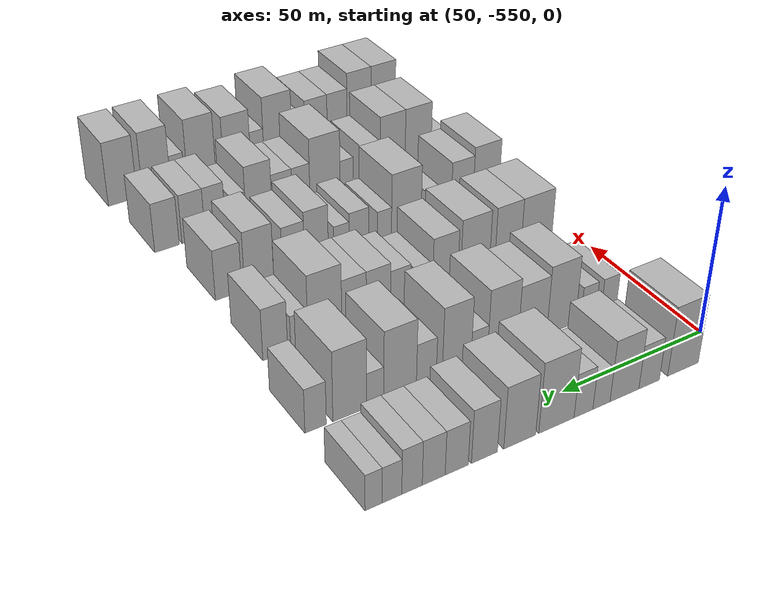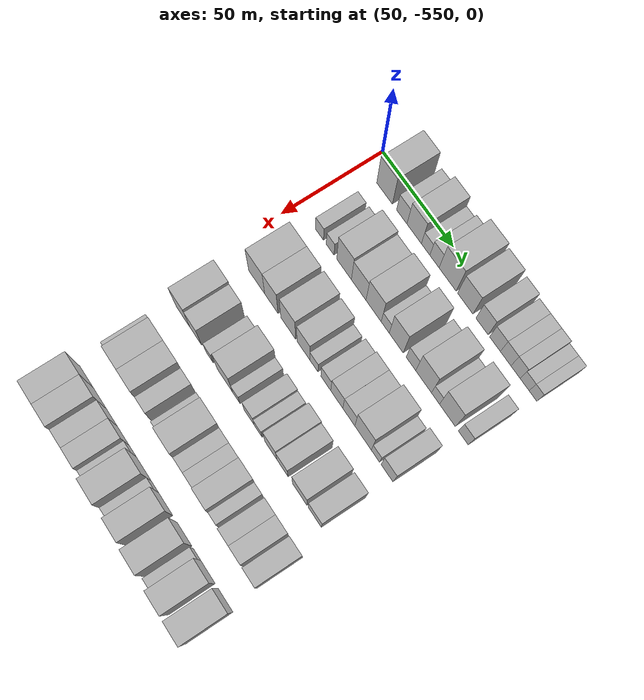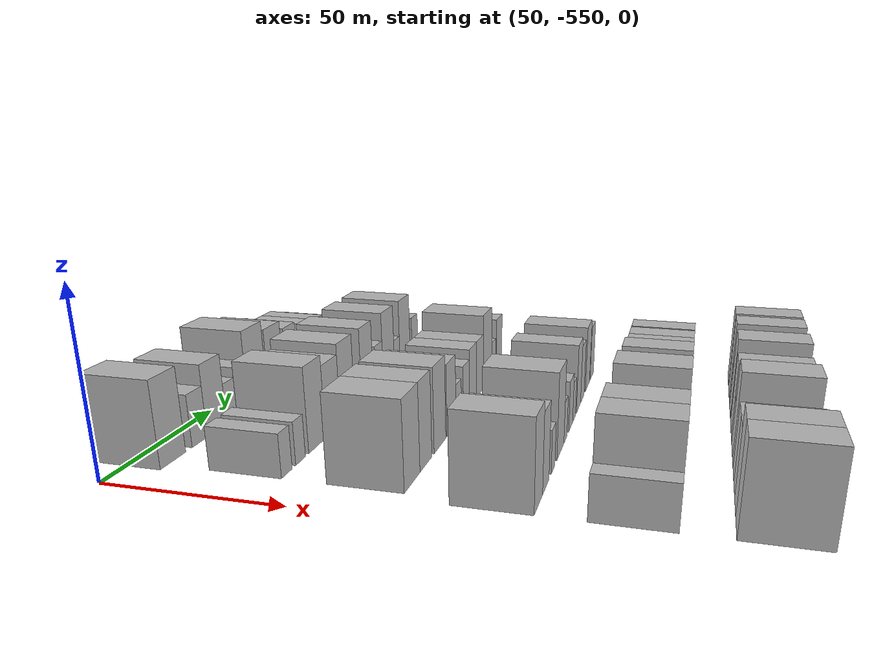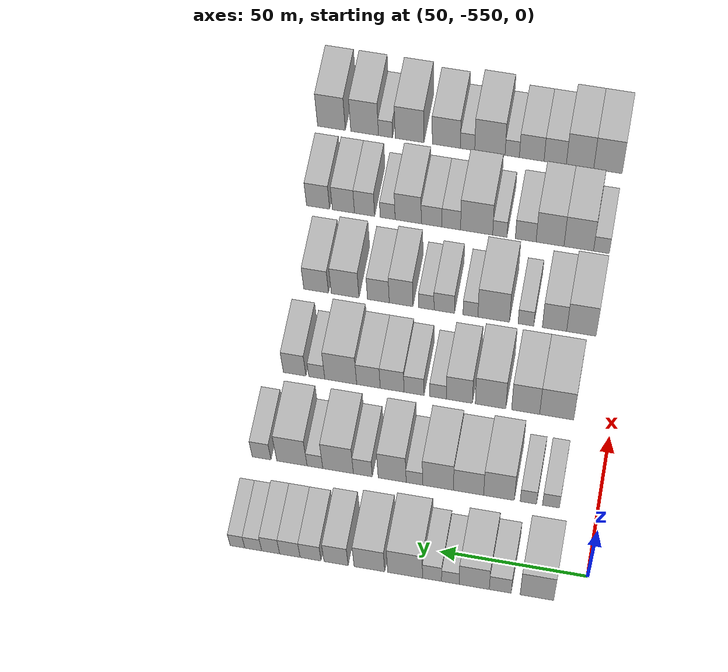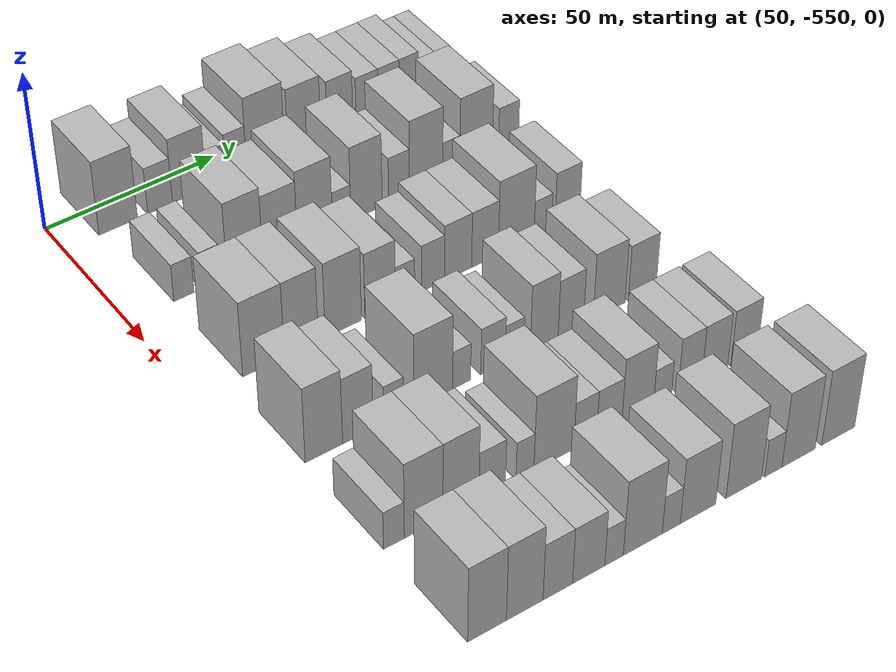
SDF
<sdf version="1.6">
 <world name="default">
  <model name="building_1">
   <static>1</static>
   <pose>50.0000 -534.3825 0 0.000000 0.000000 0.000000</pose>
   <link name="link">
    <pose>0 0 12.00 0 0 0</pose>
    <collision name="collision"><geometry><box><size>20.0000 11.2351 24.0000</size></box></geometry></collision>
    <visual name="visual">
     <cast_shadows>0</cast_shadows>
     <geometry><box><size>20.0000 11.2351 24.0000</size></box></geometry>
     <material>
      <script>
       <uri>model://HANNAS_wall/materials/scripts</uri>
       <uri>model://HANNAS_wall/materials/textures</uri>
       <name>vrc/HANNAS_wall</name>
      </script>
     </material>
    </visual>
   </link>
  </model>
  <model name="building_2">
   <static>1</static>
   <pose>50.0000 -522.0917 0 0.000000 0.000000 0.000000</pose>
   <link name="link">
    <pose>0 0 7.50 0 0 0</pose>
    <collision name="collision"><geometry><box><size>20.0000 7.3464 15.0000</size></box></geometry></collision>
    <visual name="visual">
     <cast_shadows>0</cast_shadows>
     <geometry><box><size>20.0000 7.3464 15.0000</size></box></geometry>
     <material>
      <script>
       <uri>model://HANNAS_wall/materials/scripts</uri>
       <uri>model://HANNAS_wall/materials/textures</uri>
       <name>vrc/HANNAS_wall</name>
      </script>
     </material>
    </visual>
   </link>
  </model>
  <model name="building_3">
   <static>1</static>
   <pose>50.0000 -513.3601 0 0.000000 0.000000 0.000000</pose>
   <link name="link">
    <pose>0 0 10.50 0 0 0</pose>
    <collision name="collision"><geometry><box><size>20.0000 10.1168 21.0000</size></box></geometry></collision>
    <visual name="visual">
     <cast_shadows>0</cast_shadows>
     <geometry><box><size>20.0000 10.1168 21.0000</size></box></geometry>
     <material>
      <script>
       <uri>model://HANNAS_wall/materials/scripts</uri>
       <uri>model://HANNAS_wall/materials/textures</uri>
       <name>vrc/HANNAS_wall</name>
      </script>
     </material>
    </visual>
   </link>
  </model>
  <model name="building_4">
   <static>1</static>
   <pose>50.0000 -505.3508 0 0.000000 0.000000 0.000000</pose>
   <link name="link">
    <pose>0 0 6.00 0 0 0</pose>
    <collision name="collision"><geometry><box><size>20.0000 5.9018 12.0000</size></box></geometry></collision>
    <visual name="visual">
     <cast_shadows>0</cast_shadows>
     <geometry><box><size>20.0000 5.9018 12.0000</size></box></geometry>
     <material>
      <script>
       <uri>model://HANNAS_wall/materials/scripts</uri>
       <uri>model://HANNAS_wall/materials/textures</uri>
       <name>vrc/HANNAS_wall</name>
      </script>
     </material>
    </visual>
   </link>
  </model>
  <model name="building_5">
   <static>1</static>
   <pose>50.0000 -499.2001 0 0.000000 0.000000 0.000000</pose>
   <link name="link">
    <pose>0 0 7.50 0 0 0</pose>
    <collision name="collision"><geometry><box><size>20.0000 6.3995 15.0000</size></box></geometry></collision>
    <visual name="visual">
     <cast_shadows>0</cast_shadows>
     <geometry><box><size>20.0000 6.3995 15.0000</size></box></geometry>
     <material>
      <script>
       <uri>model://HANNAS_wall/materials/scripts</uri>
       <uri>model://HANNAS_wall/materials/textures</uri>
       <name>vrc/HANNAS_wall</name>
      </script>
     </material>
    </visual>
   </link>
  </model>
  <model name="building_6">
   <static>1</static>
   <pose>50.0000 -490.1335 0 0.000000 0.000000 0.000000</pose>
   <link name="link">
    <pose>0 0 12.00 0 0 0</pose>
    <collision name="collision"><geometry><box><size>20.0000 11.7337 24.0000</size></box></geometry></collision>
    <visual name="visual">
     <cast_shadows>0</cast_shadows>
     <geometry><box><size>20.0000 11.7337 24.0000</size></box></geometry>
     <material>
      <script>
       <uri>model://HANNAS_wall/materials/scripts</uri>
       <uri>model://HANNAS_wall/materials/textures</uri>
       <name>vrc/HANNAS_wall</name>
      </script>
     </material>
    </visual>
   </link>
  </model>
  <model name="building_7">
   <static>1</static>
   <pose>50.0000 -478.0948 0 0.000000 0.000000 0.000000</pose>
   <link name="link">
    <pose>0 0 10.50 0 0 0</pose>
    <collision name="collision"><geometry><box><size>20.0000 10.3437 21.0000</size></box></geometry></collision>
    <visual name="visual">
     <cast_shadows>0</cast_shadows>
     <geometry><box><size>20.0000 10.3437 21.0000</size></box></geometry>
     <material>
      <script>
       <uri>model://HANNAS_wall/materials/scripts</uri>
       <uri>model://HANNAS_wall/materials/textures</uri>
       <name>vrc/HANNAS_wall</name>
      </script>
     </material>
    </visual>
   </link>
  </model>
  <model name="building_8">
   <static>1</static>
   <pose>50.0000 -466.8338 0 0.000000 0.000000 0.000000</pose>
   <link name="link">
    <pose>0 0 9.00 0 0 0</pose>
    <collision name="collision"><geometry><box><size>20.0000 8.1785 18.0000</size></box></geometry></collision>
    <visual name="visual">
     <cast_shadows>0</cast_shadows>
     <geometry><box><size>20.0000 8.1785 18.0000</size></box></geometry>
     <material>
      <script>
       <uri>model://HANNAS_wall/materials/scripts</uri>
       <uri>model://HANNAS_wall/materials/textures</uri>
       <name>vrc/HANNAS_wall</name>
      </script>
     </material>
    </visual>
   </link>
  </model>
  <model name="building_9">
   <static>1</static>
   <pose>50.0000 -458.1896 0 0.000000 0.000000 0.000000</pose>
   <link name="link">
    <pose>0 0 7.50 0 0 0</pose>
    <collision name="collision"><geometry><box><size>20.0000 7.1099 15.0000</size></box></geometry></collision>
    <visual name="visual">
     <cast_shadows>0</cast_shadows>
     <geometry><box><size>20.0000 7.1099 15.0000</size></box></geometry>
     <material>
      <script>
       <uri>model://HANNAS_wall/materials/scripts</uri>
       <uri>model://HANNAS_wall/materials/textures</uri>
       <name>vrc/HANNAS_wall</name>
      </script>
     </material>
    </visual>
   </link>
  </model>
  <model name="building_10">
   <static>1</static>
   <pose>50.0000 -451.1590 0 0.000000 0.000000 0.000000</pose>
   <link name="link">
    <pose>0 0 7.50 0 0 0</pose>
    <collision name="collision"><geometry><box><size>20.0000 6.9512 15.0000</size></box></geometry></collision>
    <visual name="visual">
     <cast_shadows>0</cast_shadows>
     <geometry><box><size>20.0000 6.9512 15.0000</size></box></geometry>
     <material>
      <script>
       <uri>model://HANNAS_wall/materials/scripts</uri>
       <uri>model://HANNAS_wall/materials/textures</uri>
       <name>vrc/HANNAS_wall</name>
      </script>
     </material>
    </visual>
   </link>
  </model>
  <model name="building_11">
   <static>1</static>
   <pose>50.0000 -444.6367 0 0.000000 0.000000 0.000000</pose>
   <link name="link">
    <pose>0 0 7.50 0 0 0</pose>
    <collision name="collision"><geometry><box><size>20.0000 6.0934 15.0000</size></box></geometry></collision>
    <visual name="visual">
     <cast_shadows>0</cast_shadows>
     <geometry><box><size>20.0000 6.0934 15.0000</size></box></geometry>
     <material>
      <script>
       <uri>model://HANNAS_wall/materials/scripts</uri>
       <uri>model://HANNAS_wall/materials/textures</uri>
       <name>vrc/HANNAS_wall</name>
      </script>
     </material>
    </visual>
   </link>
  </model>
  <model name="building_12">
   <static>1</static>
   <pose>50.0000 -438.7081 0 0.000000 0.000000 0.000000</pose>
   <link name="link">
    <pose>0 0 6.00 0 0 0</pose>
    <collision name="collision"><geometry><box><size>20.0000 5.7638 12.0000</size></box></geometry></collision>
    <visual name="visual">
     <cast_shadows>0</cast_shadows>
     <geometry><box><size>20.0000 5.7638 12.0000</size></box></geometry>
     <material>
      <script>
       <uri>model://HANNAS_wall/materials/scripts</uri>
       <uri>model://HANNAS_wall/materials/textures</uri>
       <name>vrc/HANNAS_wall</name>
      </script>
     </material>
    </visual>
   </link>
  </model>
  <model name="building_13">
   <static>1</static>
   <pose>50.0000 -433.3469 0 0.000000 0.000000 0.000000</pose>
   <link name="link">
    <pose>0 0 6.00 0 0 0</pose>
    <collision name="collision"><geometry><box><size>20.0000 4.9587 12.0000</size></box></geometry></collision>
    <visual name="visual">
     <cast_shadows>0</cast_shadows>
     <geometry><box><size>20.0000 4.9587 12.0000</size></box></geometry>
     <material>
      <script>
       <uri>model://HANNAS_wall/materials/scripts</uri>
       <uri>model://HANNAS_wall/materials/textures</uri>
       <name>vrc/HANNAS_wall</name>
      </script>
     </material>
    </visual>
   </link>
  </model>
  <model name="building_125">
   <static>1</static>
   <pose>82.0000 -534.1096 0 0.000000 0.000000 0.000000</pose>
   <link name="link">
    <pose>0 0 6.00 0 0 0</pose>
    <collision name="collision"><geometry><box><size>20.0000 5.7808 12.0000</size></box></geometry></collision>
    <visual name="visual">
     <cast_shadows>0</cast_shadows>
     <geometry><box><size>20.0000 5.7808 12.0000</size></box></geometry>
     <material>
      <script>
       <uri>model://HANNAS_wall/materials/scripts</uri>
       <uri>model://HANNAS_wall/materials/textures</uri>
       <name>vrc/HANNAS_wall</name>
      </script>
     </material>
    </visual>
   </link>
  </model>
  <model name="building_126">
   <static>1</static>
   <pose>82.0000 -526.4332 0 0.000000 0.000000 0.000000</pose>
   <link name="link">
    <pose>0 0 6.00 0 0 0</pose>
    <collision name="collision"><geometry><box><size>20.0000 5.5720 12.0000</size></box></geometry></collision>
    <visual name="visual">
     <cast_shadows>0</cast_shadows>
     <geometry><box><size>20.0000 5.5720 12.0000</size></box></geometry>
     <material>
      <script>
       <uri>model://HANNAS_wall/materials/scripts</uri>
       <uri>model://HANNAS_wall/materials/textures</uri>
       <name>vrc/HANNAS_wall</name>
      </script>
     </material>
    </visual>
   </link>
  </model>
  <model name="building_127">
   <static>1</static>
   <pose>82.0000 -516.4181 0 0.000000 0.000000 0.000000</pose>
   <link name="link">
    <pose>0 0 12.00 0 0 0</pose>
    <collision name="collision"><geometry><box><size>20.0000 10.4582 24.0000</size></box></geometry></collision>
    <visual name="visual">
     <cast_shadows>0</cast_shadows>
     <geometry><box><size>20.0000 10.4582 24.0000</size></box></geometry>
     <material>
      <script>
       <uri>model://HANNAS_wall/materials/scripts</uri>
       <uri>model://HANNAS_wall/materials/textures</uri>
       <name>vrc/HANNAS_wall</name>
      </script>
     </material>
    </visual>
   </link>
  </model>
  <model name="building_128">
   <static>1</static>
   <pose>82.0000 -506.0411 0 0.000000 0.000000 0.000000</pose>
   <link name="link">
    <pose>0 0 10.50 0 0 0</pose>
    <collision name="collision"><geometry><box><size>20.0000 10.2958 21.0000</size></box></geometry></collision>
    <visual name="visual">
     <cast_shadows>0</cast_shadows>
     <geometry><box><size>20.0000 10.2958 21.0000</size></box></geometry>
     <material>
      <script>
       <uri>model://HANNAS_wall/materials/scripts</uri>
       <uri>model://HANNAS_wall/materials/textures</uri>
       <name>vrc/HANNAS_wall</name>
      </script>
     </material>
    </visual>
   </link>
  </model>
  <model name="building_129">
   <static>1</static>
   <pose>82.0000 -495.6116 0 0.000000 0.000000 0.000000</pose>
   <link name="link">
    <pose>0 0 12.00 0 0 0</pose>
    <collision name="collision"><geometry><box><size>20.0000 10.5632 24.0000</size></box></geometry></collision>
    <visual name="visual">
     <cast_shadows>0</cast_shadows>
     <geometry><box><size>20.0000 10.5632 24.0000</size></box></geometry>
     <material>
      <script>
       <uri>model://HANNAS_wall/materials/scripts</uri>
       <uri>model://HANNAS_wall/materials/textures</uri>
       <name>vrc/HANNAS_wall</name>
      </script>
     </material>
    </visual>
   </link>
  </model>
  <model name="building_130">
   <static>1</static>
   <pose>82.0000 -487.5135 0 0.000000 0.000000 0.000000</pose>
   <link name="link">
    <pose>0 0 6.00 0 0 0</pose>
    <collision name="collision"><geometry><box><size>20.0000 5.6329 12.0000</size></box></geometry></collision>
    <visual name="visual">
     <cast_shadows>0</cast_shadows>
     <geometry><box><size>20.0000 5.6329 12.0000</size></box></geometry>
     <material>
      <script>
       <uri>model://HANNAS_wall/materials/scripts</uri>
       <uri>model://HANNAS_wall/materials/textures</uri>
       <name>vrc/HANNAS_wall</name>
      </script>
     </material>
    </visual>
   </link>
  </model>
  <model name="building_131">
   <static>1</static>
   <pose>82.0000 -479.8884 0 0.000000 0.000000 0.000000</pose>
   <link name="link">
    <pose>0 0 12.00 0 0 0</pose>
    <collision name="collision"><geometry><box><size>20.0000 9.6173 24.0000</size></box></geometry></collision>
    <visual name="visual">
     <cast_shadows>0</cast_shadows>
     <geometry><box><size>20.0000 9.6173 24.0000</size></box></geometry>
     <material>
      <script>
       <uri>model://HANNAS_wall/materials/scripts</uri>
       <uri>model://HANNAS_wall/materials/textures</uri>
       <name>vrc/HANNAS_wall</name>
      </script>
     </material>
    </visual>
   </link>
  </model>
  <model name="building_132">
   <static>1</static>
   <pose>82.0000 -469.8214 0 0.000000 0.000000 0.000000</pose>
   <link name="link">
    <pose>0 0 7.50 0 0 0</pose>
    <collision name="collision"><geometry><box><size>20.0000 6.5168 15.0000</size></box></geometry></collision>
    <visual name="visual">
     <cast_shadows>0</cast_shadows>
     <geometry><box><size>20.0000 6.5168 15.0000</size></box></geometry>
     <material>
      <script>
       <uri>model://HANNAS_wall/materials/scripts</uri>
       <uri>model://HANNAS_wall/materials/textures</uri>
       <name>vrc/HANNAS_wall</name>
      </script>
     </material>
    </visual>
   </link>
  </model>
  <model name="building_133">
   <static>1</static>
   <pose>82.0000 -461.2963 0 0.000000 0.000000 0.000000</pose>
   <link name="link">
    <pose>0 0 12.00 0 0 0</pose>
    <collision name="collision"><geometry><box><size>20.0000 10.5333 24.0000</size></box></geometry></collision>
    <visual name="visual">
     <cast_shadows>0</cast_shadows>
     <geometry><box><size>20.0000 10.5333 24.0000</size></box></geometry>
     <material>
      <script>
       <uri>model://HANNAS_wall/materials/scripts</uri>
       <uri>model://HANNAS_wall/materials/textures</uri>
       <name>vrc/HANNAS_wall</name>
      </script>
     </material>
    </visual>
   </link>
  </model>
  <model name="building_134">
   <static>1</static>
   <pose>82.0000 -453.3208 0 0.000000 0.000000 0.000000</pose>
   <link name="link">
    <pose>0 0 6.00 0 0 0</pose>
    <collision name="collision"><geometry><box><size>20.0000 5.4177 12.0000</size></box></geometry></collision>
    <visual name="visual">
     <cast_shadows>0</cast_shadows>
     <geometry><box><size>20.0000 5.4177 12.0000</size></box></geometry>
     <material>
      <script>
       <uri>model://HANNAS_wall/materials/scripts</uri>
       <uri>model://HANNAS_wall/materials/textures</uri>
       <name>vrc/HANNAS_wall</name>
      </script>
     </material>
    </visual>
   </link>
  </model>
  <model name="building_135">
   <static>1</static>
   <pose>82.0000 -445.3828 0 0.000000 0.000000 0.000000</pose>
   <link name="link">
    <pose>0 0 12.00 0 0 0</pose>
    <collision name="collision"><geometry><box><size>20.0000 10.4583 24.0000</size></box></geometry></collision>
    <visual name="visual">
     <cast_shadows>0</cast_shadows>
     <geometry><box><size>20.0000 10.4583 24.0000</size></box></geometry>
     <material>
      <script>
       <uri>model://HANNAS_wall/materials/scripts</uri>
       <uri>model://HANNAS_wall/materials/textures</uri>
       <name>vrc/HANNAS_wall</name>
      </script>
     </material>
    </visual>
   </link>
  </model>
  <model name="building_136">
   <static>1</static>
   <pose>82.0000 -434.9114 0 0.000000 0.000000 0.000000</pose>
   <link name="link">
    <pose>0 0 7.50 0 0 0</pose>
    <collision name="collision"><geometry><box><size>20.0000 6.4846 15.0000</size></box></geometry></collision>
    <visual name="visual">
     <cast_shadows>0</cast_shadows>
     <geometry><box><size>20.0000 6.4846 15.0000</size></box></geometry>
     <material>
      <script>
       <uri>model://HANNAS_wall/materials/scripts</uri>
       <uri>model://HANNAS_wall/materials/textures</uri>
       <name>vrc/HANNAS_wall</name>
      </script>
     </material>
    </visual>
   </link>
  </model>
  <model name="building_248">
   <static>1</static>
   <pose>114.0000 -531.1167 0 0.000000 0.000000 0.000000</pose>
   <link name="link">
    <pose>0 0 12.00 0 0 0</pose>
    <collision name="collision"><geometry><box><size>20.0000 11.7666 24.0000</size></box></geometry></collision>
    <visual name="visual">
     <cast_shadows>0</cast_shadows>
     <geometry><box><size>20.0000 11.7666 24.0000</size></box></geometry>
     <material>
      <script>
       <uri>model://HANNAS_wall/materials/scripts</uri>
       <uri>model://HANNAS_wall/materials/textures</uri>
       <name>vrc/HANNAS_wall</name>
      </script>
     </material>
    </visual>
   </link>
  </model>
  <model name="building_249">
   <static>1</static>
   <pose>114.0000 -520.3749 0 0.000000 0.000000 0.000000</pose>
   <link name="link">
    <pose>0 0 12.00 0 0 0</pose>
    <collision name="collision"><geometry><box><size>20.0000 9.7169 24.0000</size></box></geometry></collision>
    <visual name="visual">
     <cast_shadows>0</cast_shadows>
     <geometry><box><size>20.0000 9.7169 24.0000</size></box></geometry>
     <material>
      <script>
       <uri>model://HANNAS_wall/materials/scripts</uri>
       <uri>model://HANNAS_wall/materials/textures</uri>
       <name>vrc/HANNAS_wall</name>
      </script>
     </material>
    </visual>
   </link>
  </model>
  <model name="building_250">
   <static>1</static>
   <pose>114.0000 -508.2264 0 0.000000 0.000000 0.000000</pose>
   <link name="link">
    <pose>0 0 12.00 0 0 0</pose>
    <collision name="collision"><geometry><box><size>20.0000 10.5801 24.0000</size></box></geometry></collision>
    <visual name="visual">
     <cast_shadows>0</cast_shadows>
     <geometry><box><size>20.0000 10.5801 24.0000</size></box></geometry>
     <material>
      <script>
       <uri>model://HANNAS_wall/materials/scripts</uri>
       <uri>model://HANNAS_wall/materials/textures</uri>
       <name>vrc/HANNAS_wall</name>
      </script>
     </material>
    </visual>
   </link>
  </model>
  <model name="building_251">
   <static>1</static>
   <pose>114.0000 -497.4077 0 0.000000 0.000000 0.000000</pose>
   <link name="link">
    <pose>0 0 10.50 0 0 0</pose>
    <collision name="collision"><geometry><box><size>20.0000 9.0573 21.0000</size></box></geometry></collision>
    <visual name="visual">
     <cast_shadows>0</cast_shadows>
     <geometry><box><size>20.0000 9.0573 21.0000</size></box></geometry>
     <material>
      <script>
       <uri>model://HANNAS_wall/materials/scripts</uri>
       <uri>model://HANNAS_wall/materials/textures</uri>
       <name>vrc/HANNAS_wall</name>
      </script>
     </material>
    </visual>
   </link>
  </model>
  <model name="building_252">
   <static>1</static>
   <pose>114.0000 -490.0040 0 0.000000 0.000000 0.000000</pose>
   <link name="link">
    <pose>0 0 6.00 0 0 0</pose>
    <collision name="collision"><geometry><box><size>20.0000 5.7503 12.0000</size></box></geometry></collision>
    <visual name="visual">
     <cast_shadows>0</cast_shadows>
     <geometry><box><size>20.0000 5.7503 12.0000</size></box></geometry>
     <material>
      <script>
       <uri>model://HANNAS_wall/materials/scripts</uri>
       <uri>model://HANNAS_wall/materials/textures</uri>
       <name>vrc/HANNAS_wall</name>
      </script>
     </material>
    </visual>
   </link>
  </model>
  <model name="building_253">
   <static>1</static>
   <pose>114.0000 -481.6465 0 0.000000 0.000000 0.000000</pose>
   <link name="link">
    <pose>0 0 7.50 0 0 0</pose>
    <collision name="collision"><geometry><box><size>20.0000 6.9648 15.0000</size></box></geometry></collision>
    <visual name="visual">
     <cast_shadows>0</cast_shadows>
     <geometry><box><size>20.0000 6.9648 15.0000</size></box></geometry>
     <material>
      <script>
       <uri>model://HANNAS_wall/materials/scripts</uri>
       <uri>model://HANNAS_wall/materials/textures</uri>
       <name>vrc/HANNAS_wall</name>
      </script>
     </material>
    </visual>
   </link>
  </model>
  <model name="building_254">
   <static>1</static>
   <pose>114.0000 -474.0024 0 0.000000 0.000000 0.000000</pose>
   <link name="link">
    <pose>0 0 9.00 0 0 0</pose>
    <collision name="collision"><geometry><box><size>20.0000 8.3234 18.0000</size></box></geometry></collision>
    <visual name="visual">
     <cast_shadows>0</cast_shadows>
     <geometry><box><size>20.0000 8.3234 18.0000</size></box></geometry>
     <material>
      <script>
       <uri>model://HANNAS_wall/materials/scripts</uri>
       <uri>model://HANNAS_wall/materials/textures</uri>
       <name>vrc/HANNAS_wall</name>
      </script>
     </material>
    </visual>
   </link>
  </model>
  <model name="building_255">
   <static>1</static>
   <pose>114.0000 -465.7254 0 0.000000 0.000000 0.000000</pose>
   <link name="link">
    <pose>0 0 9.00 0 0 0</pose>
    <collision name="collision"><geometry><box><size>20.0000 8.2305 18.0000</size></box></geometry></collision>
    <visual name="visual">
     <cast_shadows>0</cast_shadows>
     <geometry><box><size>20.0000 8.2305 18.0000</size></box></geometry>
     <material>
      <script>
       <uri>model://HANNAS_wall/materials/scripts</uri>
       <uri>model://HANNAS_wall/materials/textures</uri>
       <name>vrc/HANNAS_wall</name>
      </script>
     </material>
    </visual>
   </link>
  </model>
  <model name="building_256">
   <static>1</static>
   <pose>114.0000 -456.0344 0 0.000000 0.000000 0.000000</pose>
   <link name="link">
    <pose>0 0 12.00 0 0 0</pose>
    <collision name="collision"><geometry><box><size>20.0000 11.1514 24.0000</size></box></geometry></collision>
    <visual name="visual">
     <cast_shadows>0</cast_shadows>
     <geometry><box><size>20.0000 11.1514 24.0000</size></box></geometry>
     <material>
      <script>
       <uri>model://HANNAS_wall/materials/scripts</uri>
       <uri>model://HANNAS_wall/materials/textures</uri>
       <name>vrc/HANNAS_wall</name>
      </script>
     </material>
    </visual>
   </link>
  </model>
  <model name="building_257">
   <static>1</static>
   <pose>114.0000 -447.6495 0 0.000000 0.000000 0.000000</pose>
   <link name="link">
    <pose>0 0 6.00 0 0 0</pose>
    <collision name="collision"><geometry><box><size>20.0000 5.6185 12.0000</size></box></geometry></collision>
    <visual name="visual">
     <cast_shadows>0</cast_shadows>
     <geometry><box><size>20.0000 5.6185 12.0000</size></box></geometry>
     <material>
      <script>
       <uri>model://HANNAS_wall/materials/scripts</uri>
       <uri>model://HANNAS_wall/materials/textures</uri>
       <name>vrc/HANNAS_wall</name>
      </script>
     </material>
    </visual>
   </link>
  </model>
  <model name="building_258">
   <static>1</static>
   <pose>114.0000 -439.8764 0 0.000000 0.000000 0.000000</pose>
   <link name="link">
    <pose>0 0 9.00 0 0 0</pose>
    <collision name="collision"><geometry><box><size>20.0000 7.9276 18.0000</size></box></geometry></collision>
    <visual name="visual">
     <cast_shadows>0</cast_shadows>
     <geometry><box><size>20.0000 7.9276 18.0000</size></box></geometry>
     <material>
      <script>
       <uri>model://HANNAS_wall/materials/scripts</uri>
       <uri>model://HANNAS_wall/materials/textures</uri>
       <name>vrc/HANNAS_wall</name>
      </script>
     </material>
    </visual>
   </link>
  </model>
  <model name="building_371">
   <static>1</static>
   <pose>146.0000 -534.8380 0 0.000000 0.000000 0.000000</pose>
   <link name="link">
    <pose>0 0 12.00 0 0 0</pose>
    <collision name="collision"><geometry><box><size>20.0000 10.3240 24.0000</size></box></geometry></collision>
    <visual name="visual">
     <cast_shadows>0</cast_shadows>
     <geometry><box><size>20.0000 10.3240 24.0000</size></box></geometry>
     <material>
      <script>
       <uri>model://HANNAS_wall/materials/scripts</uri>
       <uri>model://HANNAS_wall/materials/textures</uri>
       <name>vrc/HANNAS_wall</name>
      </script>
     </material>
    </visual>
   </link>
  </model>
  <model name="building_372">
   <static>1</static>
   <pose>146.0000 -525.4042 0 0.000000 0.000000 0.000000</pose>
   <link name="link">
    <pose>0 0 10.50 0 0 0</pose>
    <collision name="collision"><geometry><box><size>20.0000 8.5436 21.0000</size></box></geometry></collision>
    <visual name="visual">
     <cast_shadows>0</cast_shadows>
     <geometry><box><size>20.0000 8.5436 21.0000</size></box></geometry>
     <material>
      <script>
       <uri>model://HANNAS_wall/materials/scripts</uri>
       <uri>model://HANNAS_wall/materials/textures</uri>
       <name>vrc/HANNAS_wall</name>
      </script>
     </material>
    </visual>
   </link>
  </model>
  <model name="building_373">
   <static>1</static>
   <pose>146.0000 -515.3610 0 0.000000 0.000000 0.000000</pose>
   <link name="link">
    <pose>0 0 6.00 0 0 0</pose>
    <collision name="collision"><geometry><box><size>20.0000 5.5429 12.0000</size></box></geometry></collision>
    <visual name="visual">
     <cast_shadows>0</cast_shadows>
     <geometry><box><size>20.0000 5.5429 12.0000</size></box></geometry>
     <material>
      <script>
       <uri>model://HANNAS_wall/materials/scripts</uri>
       <uri>model://HANNAS_wall/materials/textures</uri>
       <name>vrc/HANNAS_wall</name>
      </script>
     </material>
    </visual>
   </link>
  </model>
  <model name="building_374">
   <static>1</static>
   <pose>146.0000 -504.0230 0 0.000000 0.000000 0.000000</pose>
   <link name="link">
    <pose>0 0 12.00 0 0 0</pose>
    <collision name="collision"><geometry><box><size>20.0000 11.1330 24.0000</size></box></geometry></collision>
    <visual name="visual">
     <cast_shadows>0</cast_shadows>
     <geometry><box><size>20.0000 11.1330 24.0000</size></box></geometry>
     <material>
      <script>
       <uri>model://HANNAS_wall/materials/scripts</uri>
       <uri>model://HANNAS_wall/materials/textures</uri>
       <name>vrc/HANNAS_wall</name>
      </script>
     </material>
    </visual>
   </link>
  </model>
  <model name="building_375">
   <static>1</static>
   <pose>146.0000 -495.8245 0 0.000000 0.000000 0.000000</pose>
   <link name="link">
    <pose>0 0 6.00 0 0 0</pose>
    <collision name="collision"><geometry><box><size>20.0000 5.2641 12.0000</size></box></geometry></collision>
    <visual name="visual">
     <cast_shadows>0</cast_shadows>
     <geometry><box><size>20.0000 5.2641 12.0000</size></box></geometry>
     <material>
      <script>
       <uri>model://HANNAS_wall/materials/scripts</uri>
       <uri>model://HANNAS_wall/materials/textures</uri>
       <name>vrc/HANNAS_wall</name>
      </script>
     </material>
    </visual>
   </link>
  </model>
  <model name="building_376">
   <static>1</static>
   <pose>146.0000 -486.5660 0 0.000000 0.000000 0.000000</pose>
   <link name="link">
    <pose>0 0 7.50 0 0 0</pose>
    <collision name="collision"><geometry><box><size>20.0000 7.2530 15.0000</size></box></geometry></collision>
    <visual name="visual">
     <cast_shadows>0</cast_shadows>
     <geometry><box><size>20.0000 7.2530 15.0000</size></box></geometry>
     <material>
      <script>
       <uri>model://HANNAS_wall/materials/scripts</uri>
       <uri>model://HANNAS_wall/materials/textures</uri>
       <name>vrc/HANNAS_wall</name>
      </script>
     </material>
    </visual>
   </link>
  </model>
  <model name="building_377">
   <static>1</static>
   <pose>146.0000 -480.2221 0 0.000000 0.000000 0.000000</pose>
   <link name="link">
    <pose>0 0 6.00 0 0 0</pose>
    <collision name="collision"><geometry><box><size>20.0000 5.4348 12.0000</size></box></geometry></collision>
    <visual name="visual">
     <cast_shadows>0</cast_shadows>
     <geometry><box><size>20.0000 5.4348 12.0000</size></box></geometry>
     <material>
      <script>
       <uri>model://HANNAS_wall/materials/scripts</uri>
       <uri>model://HANNAS_wall/materials/textures</uri>
       <name>vrc/HANNAS_wall</name>
      </script>
     </material>
    </visual>
   </link>
  </model>
  <model name="building_378">
   <static>1</static>
   <pose>146.0000 -471.3010 0 0.000000 0.000000 0.000000</pose>
   <link name="link">
    <pose>0 0 10.50 0 0 0</pose>
    <collision name="collision"><geometry><box><size>20.0000 8.4074 21.0000</size></box></geometry></collision>
    <visual name="visual">
     <cast_shadows>0</cast_shadows>
     <geometry><box><size>20.0000 8.4074 21.0000</size></box></geometry>
     <material>
      <script>
       <uri>model://HANNAS_wall/materials/scripts</uri>
       <uri>model://HANNAS_wall/materials/textures</uri>
       <name>vrc/HANNAS_wall</name>
      </script>
     </material>
    </visual>
   </link>
  </model>
  <model name="building_379">
   <static>1</static>
   <pose>146.0000 -463.2246 0 0.000000 0.000000 0.000000</pose>
   <link name="link">
    <pose>0 0 9.00 0 0 0</pose>
    <collision name="collision"><geometry><box><size>20.0000 7.7453 18.0000</size></box></geometry></collision>
    <visual name="visual">
     <cast_shadows>0</cast_shadows>
     <geometry><box><size>20.0000 7.7453 18.0000</size></box></geometry>
     <material>
      <script>
       <uri>model://HANNAS_wall/materials/scripts</uri>
       <uri>model://HANNAS_wall/materials/textures</uri>
       <name>vrc/HANNAS_wall</name>
      </script>
     </material>
    </visual>
   </link>
  </model>
  <model name="building_380">
   <static>1</static>
   <pose>146.0000 -451.4231 0 0.000000 0.000000 0.000000</pose>
   <link name="link">
    <pose>0 0 10.50 0 0 0</pose>
    <collision name="collision"><geometry><box><size>20.0000 9.8577 21.0000</size></box></geometry></collision>
    <visual name="visual">
     <cast_shadows>0</cast_shadows>
     <geometry><box><size>20.0000 9.8577 21.0000</size></box></geometry>
     <material>
      <script>
       <uri>model://HANNAS_wall/materials/scripts</uri>
       <uri>model://HANNAS_wall/materials/textures</uri>
       <name>vrc/HANNAS_wall</name>
      </script>
     </material>
    </visual>
   </link>
  </model>
  <model name="building_381">
   <static>1</static>
   <pose>146.0000 -441.0941 0 0.000000 0.000000 0.000000</pose>
   <link name="link">
    <pose>0 0 9.00 0 0 0</pose>
    <collision name="collision"><geometry><box><size>20.0000 8.8003 18.0000</size></box></geometry></collision>
    <visual name="visual">
     <cast_shadows>0</cast_shadows>
     <geometry><box><size>20.0000 8.8003 18.0000</size></box></geometry>
     <material>
      <script>
       <uri>model://HANNAS_wall/materials/scripts</uri>
       <uri>model://HANNAS_wall/materials/textures</uri>
       <name>vrc/HANNAS_wall</name>
      </script>
     </material>
    </visual>
   </link>
  </model>
  <model name="building_488">
   <static>1</static>
   <pose>178.0000 -537.1944 0 0.000000 0.000000 0.000000</pose>
   <link name="link">
    <pose>0 0 6.00 0 0 0</pose>
    <collision name="collision"><geometry><box><size>20.0000 5.6111 12.0000</size></box></geometry></collision>
    <visual name="visual">
     <cast_shadows>0</cast_shadows>
     <geometry><box><size>20.0000 5.6111 12.0000</size></box></geometry>
     <material>
      <script>
       <uri>model://HANNAS_wall/materials/scripts</uri>
       <uri>model://HANNAS_wall/materials/textures</uri>
       <name>vrc/HANNAS_wall</name>
      </script>
     </material>
    </visual>
   </link>
  </model>
  <model name="building_489">
   <static>1</static>
   <pose>178.0000 -529.1214 0 0.000000 0.000000 0.000000</pose>
   <link name="link">
    <pose>0 0 12.00 0 0 0</pose>
    <collision name="collision"><geometry><box><size>20.0000 10.5348 24.0000</size></box></geometry></collision>
    <visual name="visual">
     <cast_shadows>0</cast_shadows>
     <geometry><box><size>20.0000 10.5348 24.0000</size></box></geometry>
     <material>
      <script>
       <uri>model://HANNAS_wall/materials/scripts</uri>
       <uri>model://HANNAS_wall/materials/textures</uri>
       <name>vrc/HANNAS_wall</name>
      </script>
     </material>
    </visual>
   </link>
  </model>
  <model name="building_490">
   <static>1</static>
   <pose>178.0000 -518.8686 0 0.000000 0.000000 0.000000</pose>
   <link name="link">
    <pose>0 0 12.00 0 0 0</pose>
    <collision name="collision"><geometry><box><size>20.0000 9.9709 24.0000</size></box></geometry></collision>
    <visual name="visual">
     <cast_shadows>0</cast_shadows>
     <geometry><box><size>20.0000 9.9709 24.0000</size></box></geometry>
     <material>
      <script>
       <uri>model://HANNAS_wall/materials/scripts</uri>
       <uri>model://HANNAS_wall/materials/textures</uri>
       <name>vrc/HANNAS_wall</name>
      </script>
     </material>
    </visual>
   </link>
  </model>
  <model name="building_491">
   <static>1</static>
   <pose>178.0000 -510.1732 0 0.000000 0.000000 0.000000</pose>
   <link name="link">
    <pose>0 0 7.50 0 0 0</pose>
    <collision name="collision"><geometry><box><size>20.0000 7.4199 15.0000</size></box></geometry></collision>
    <visual name="visual">
     <cast_shadows>0</cast_shadows>
     <geometry><box><size>20.0000 7.4199 15.0000</size></box></geometry>
     <material>
      <script>
       <uri>model://HANNAS_wall/materials/scripts</uri>
       <uri>model://HANNAS_wall/materials/textures</uri>
       <name>vrc/HANNAS_wall</name>
      </script>
     </material>
    </visual>
   </link>
  </model>
  <model name="building_492">
   <static>1</static>
   <pose>178.0000 -500.9101 0 0.000000 0.000000 0.000000</pose>
   <link name="link">
    <pose>0 0 6.00 0 0 0</pose>
    <collision name="collision"><geometry><box><size>20.0000 5.1062 12.0000</size></box></geometry></collision>
    <visual name="visual">
     <cast_shadows>0</cast_shadows>
     <geometry><box><size>20.0000 5.1062 12.0000</size></box></geometry>
     <material>
      <script>
       <uri>model://HANNAS_wall/materials/scripts</uri>
       <uri>model://HANNAS_wall/materials/textures</uri>
       <name>vrc/HANNAS_wall</name>
      </script>
     </material>
    </visual>
   </link>
  </model>
  <model name="building_493">
   <static>1</static>
   <pose>178.0000 -492.6040 0 0.000000 0.000000 0.000000</pose>
   <link name="link">
    <pose>0 0 12.00 0 0 0</pose>
    <collision name="collision"><geometry><box><size>20.0000 11.5060 24.0000</size></box></geometry></collision>
    <visual name="visual">
     <cast_shadows>0</cast_shadows>
     <geometry><box><size>20.0000 11.5060 24.0000</size></box></geometry>
     <material>
      <script>
       <uri>model://HANNAS_wall/materials/scripts</uri>
       <uri>model://HANNAS_wall/materials/textures</uri>
       <name>vrc/HANNAS_wall</name>
      </script>
     </material>
    </visual>
   </link>
  </model>
  <model name="building_494">
   <static>1</static>
   <pose>178.0000 -483.5147 0 0.000000 0.000000 0.000000</pose>
   <link name="link">
    <pose>0 0 7.50 0 0 0</pose>
    <collision name="collision"><geometry><box><size>20.0000 6.6726 15.0000</size></box></geometry></collision>
    <visual name="visual">
     <cast_shadows>0</cast_shadows>
     <geometry><box><size>20.0000 6.6726 15.0000</size></box></geometry>
     <material>
      <script>
       <uri>model://HANNAS_wall/materials/scripts</uri>
       <uri>model://HANNAS_wall/materials/textures</uri>
       <name>vrc/HANNAS_wall</name>
      </script>
     </material>
    </visual>
   </link>
  </model>
  <model name="building_495">
   <static>1</static>
   <pose>178.0000 -476.4604 0 0.000000 0.000000 0.000000</pose>
   <link name="link">
    <pose>0 0 7.50 0 0 0</pose>
    <collision name="collision"><geometry><box><size>20.0000 7.4360 15.0000</size></box></geometry></collision>
    <visual name="visual">
     <cast_shadows>0</cast_shadows>
     <geometry><box><size>20.0000 7.4360 15.0000</size></box></geometry>
     <material>
      <script>
       <uri>model://HANNAS_wall/materials/scripts</uri>
       <uri>model://HANNAS_wall/materials/textures</uri>
       <name>vrc/HANNAS_wall</name>
      </script>
     </material>
    </visual>
   </link>
  </model>
  <model name="building_496">
   <static>1</static>
   <pose>178.0000 -468.0240 0 0.000000 0.000000 0.000000</pose>
   <link name="link">
    <pose>0 0 10.50 0 0 0</pose>
    <collision name="collision"><geometry><box><size>20.0000 9.4369 21.0000</size></box></geometry></collision>
    <visual name="visual">
     <cast_shadows>0</cast_shadows>
     <geometry><box><size>20.0000 9.4369 21.0000</size></box></geometry>
     <material>
      <script>
       <uri>model://HANNAS_wall/materials/scripts</uri>
       <uri>model://HANNAS_wall/materials/textures</uri>
       <name>vrc/HANNAS_wall</name>
      </script>
     </material>
    </visual>
   </link>
  </model>
  <model name="building_497">
   <static>1</static>
   <pose>178.0000 -460.6142 0 0.000000 0.000000 0.000000</pose>
   <link name="link">
    <pose>0 0 6.00 0 0 0</pose>
    <collision name="collision"><geometry><box><size>20.0000 5.3825 12.0000</size></box></geometry></collision>
    <visual name="visual">
     <cast_shadows>0</cast_shadows>
     <geometry><box><size>20.0000 5.3825 12.0000</size></box></geometry>
     <material>
      <script>
       <uri>model://HANNAS_wall/materials/scripts</uri>
       <uri>model://HANNAS_wall/materials/textures</uri>
       <name>vrc/HANNAS_wall</name>
      </script>
     </material>
    </visual>
   </link>
  </model>
  <model name="building_498">
   <static>1</static>
   <pose>178.0000 -452.2852 0 0.000000 0.000000 0.000000</pose>
   <link name="link">
    <pose>0 0 9.00 0 0 0</pose>
    <collision name="collision"><geometry><box><size>20.0000 7.2755 18.0000</size></box></geometry></collision>
    <visual name="visual">
     <cast_shadows>0</cast_shadows>
     <geometry><box><size>20.0000 7.2755 18.0000</size></box></geometry>
     <material>
      <script>
       <uri>model://HANNAS_wall/materials/scripts</uri>
       <uri>model://HANNAS_wall/materials/textures</uri>
       <name>vrc/HANNAS_wall</name>
      </script>
     </material>
    </visual>
   </link>
  </model>
  <model name="building_499">
   <static>1</static>
   <pose>178.0000 -444.6489 0 0.000000 0.000000 0.000000</pose>
   <link name="link">
    <pose>0 0 9.00 0 0 0</pose>
    <collision name="collision"><geometry><box><size>20.0000 7.9970 18.0000</size></box></geometry></collision>
    <visual name="visual">
     <cast_shadows>0</cast_shadows>
     <geometry><box><size>20.0000 7.9970 18.0000</size></box></geometry>
     <material>
      <script>
       <uri>model://HANNAS_wall/materials/scripts</uri>
       <uri>model://HANNAS_wall/materials/textures</uri>
       <name>vrc/HANNAS_wall</name>
      </script>
     </material>
    </visual>
   </link>
  </model>
  <model name="building_500">
   <static>1</static>
   <pose>178.0000 -435.4700 0 0.000000 0.000000 0.000000</pose>
   <link name="link">
    <pose>0 0 9.00 0 0 0</pose>
    <collision name="collision"><geometry><box><size>20.0000 8.3609 18.0000</size></box></geometry></collision>
    <visual name="visual">
     <cast_shadows>0</cast_shadows>
     <geometry><box><size>20.0000 8.3609 18.0000</size></box></geometry>
     <material>
      <script>
       <uri>model://HANNAS_wall/materials/scripts</uri>
       <uri>model://HANNAS_wall/materials/textures</uri>
       <name>vrc/HANNAS_wall</name>
      </script>
     </material>
    </visual>
   </link>
  </model>
  <model name="building_608">
   <static>1</static>
   <pose>210.0000 -534.8586 0 0.000000 0.000000 0.000000</pose>
   <link name="link">
    <pose>0 0 12.00 0 0 0</pose>
    <collision name="collision"><geometry><box><size>20.0000 10.2829 24.0000</size></box></geometry></collision>
    <visual name="visual">
     <cast_shadows>0</cast_shadows>
     <geometry><box><size>20.0000 10.2829 24.0000</size></box></geometry>
     <material>
      <script>
       <uri>model://HANNAS_wall/materials/scripts</uri>
       <uri>model://HANNAS_wall/materials/textures</uri>
       <name>vrc/HANNAS_wall</name>
      </script>
     </material>
    </visual>
   </link>
  </model>
  <model name="building_609">
   <static>1</static>
   <pose>210.0000 -524.7584 0 0.000000 0.000000 0.000000</pose>
   <link name="link">
    <pose>0 0 12.00 0 0 0</pose>
    <collision name="collision"><geometry><box><size>20.0000 9.9176 24.0000</size></box></geometry></collision>
    <visual name="visual">
     <cast_shadows>0</cast_shadows>
     <geometry><box><size>20.0000 9.9176 24.0000</size></box></geometry>
     <material>
      <script>
       <uri>model://HANNAS_wall/materials/scripts</uri>
       <uri>model://HANNAS_wall/materials/textures</uri>
       <name>vrc/HANNAS_wall</name>
      </script>
     </material>
    </visual>
   </link>
  </model>
  <model name="building_610">
   <static>1</static>
   <pose>210.0000 -515.7604 0 0.000000 0.000000 0.000000</pose>
   <link name="link">
    <pose>0 0 9.00 0 0 0</pose>
    <collision name="collision"><geometry><box><size>20.0000 8.0784 18.0000</size></box></geometry></collision>
    <visual name="visual">
     <cast_shadows>0</cast_shadows>
     <geometry><box><size>20.0000 8.0784 18.0000</size></box></geometry>
     <material>
      <script>
       <uri>model://HANNAS_wall/materials/scripts</uri>
       <uri>model://HANNAS_wall/materials/textures</uri>
       <name>vrc/HANNAS_wall</name>
      </script>
     </material>
    </visual>
   </link>
  </model>
  <model name="building_611">
   <static>1</static>
   <pose>210.0000 -507.2405 0 0.000000 0.000000 0.000000</pose>
   <link name="link">
    <pose>0 0 9.00 0 0 0</pose>
    <collision name="collision"><geometry><box><size>20.0000 8.9615 18.0000</size></box></geometry></collision>
    <visual name="visual">
     <cast_shadows>0</cast_shadows>
     <geometry><box><size>20.0000 8.9615 18.0000</size></box></geometry>
     <material>
      <script>
       <uri>model://HANNAS_wall/materials/scripts</uri>
       <uri>model://HANNAS_wall/materials/textures</uri>
       <name>vrc/HANNAS_wall</name>
      </script>
     </material>
    </visual>
   </link>
  </model>
  <model name="building_612">
   <static>1</static>
   <pose>210.0000 -500.1619 0 0.000000 0.000000 0.000000</pose>
   <link name="link">
    <pose>0 0 6.00 0 0 0</pose>
    <collision name="collision"><geometry><box><size>20.0000 5.1957 12.0000</size></box></geometry></collision>
    <visual name="visual">
     <cast_shadows>0</cast_shadows>
     <geometry><box><size>20.0000 5.1957 12.0000</size></box></geometry>
     <material>
      <script>
       <uri>model://HANNAS_wall/materials/scripts</uri>
       <uri>model://HANNAS_wall/materials/textures</uri>
       <name>vrc/HANNAS_wall</name>
      </script>
     </material>
    </visual>
   </link>
  </model>
  <model name="building_613">
   <static>1</static>
   <pose>210.0000 -492.0349 0 0.000000 0.000000 0.000000</pose>
   <link name="link">
    <pose>0 0 12.00 0 0 0</pose>
    <collision name="collision"><geometry><box><size>20.0000 11.0583 24.0000</size></box></geometry></collision>
    <visual name="visual">
     <cast_shadows>0</cast_shadows>
     <geometry><box><size>20.0000 11.0583 24.0000</size></box></geometry>
     <material>
      <script>
       <uri>model://HANNAS_wall/materials/scripts</uri>
       <uri>model://HANNAS_wall/materials/textures</uri>
       <name>vrc/HANNAS_wall</name>
      </script>
     </material>
    </visual>
   </link>
  </model>
  <model name="building_614">
   <static>1</static>
   <pose>210.0000 -483.9037 0 0.000000 0.000000 0.000000</pose>
   <link name="link">
    <pose>0 0 6.00 0 0 0</pose>
    <collision name="collision"><geometry><box><size>20.0000 5.2041 12.0000</size></box></geometry></collision>
    <visual name="visual">
     <cast_shadows>0</cast_shadows>
     <geometry><box><size>20.0000 5.2041 12.0000</size></box></geometry>
     <material>
      <script>
       <uri>model://HANNAS_wall/materials/scripts</uri>
       <uri>model://HANNAS_wall/materials/textures</uri>
       <name>vrc/HANNAS_wall</name>
      </script>
     </material>
    </visual>
   </link>
  </model>
  <model name="building_615">
   <static>1</static>
   <pose>210.0000 -476.1619 0 0.000000 0.000000 0.000000</pose>
   <link name="link">
    <pose>0 0 10.50 0 0 0</pose>
    <collision name="collision"><geometry><box><size>20.0000 10.2794 21.0000</size></box></geometry></collision>
    <visual name="visual">
     <cast_shadows>0</cast_shadows>
     <geometry><box><size>20.0000 10.2794 21.0000</size></box></geometry>
     <material>
      <script>
       <uri>model://HANNAS_wall/materials/scripts</uri>
       <uri>model://HANNAS_wall/materials/textures</uri>
       <name>vrc/HANNAS_wall</name>
      </script>
     </material>
    </visual>
   </link>
  </model>
  <model name="building_616">
   <static>1</static>
   <pose>210.0000 -462.7545 0 0.000000 0.000000 0.000000</pose>
   <link name="link">
    <pose>0 0 12.00 0 0 0</pose>
    <collision name="collision"><geometry><box><size>20.0000 10.5354 24.0000</size></box></geometry></collision>
    <visual name="visual">
     <cast_shadows>0</cast_shadows>
     <geometry><box><size>20.0000 10.5354 24.0000</size></box></geometry>
     <material>
      <script>
       <uri>model://HANNAS_wall/materials/scripts</uri>
       <uri>model://HANNAS_wall/materials/textures</uri>
       <name>vrc/HANNAS_wall</name>
      </script>
     </material>
    </visual>
   </link>
  </model>
  <model name="building_617">
   <static>1</static>
   <pose>210.0000 -453.9100 0 0.000000 0.000000 0.000000</pose>
   <link name="link">
    <pose>0 0 6.00 0 0 0</pose>
    <collision name="collision"><geometry><box><size>20.0000 5.1537 12.0000</size></box></geometry></collision>
    <visual name="visual">
     <cast_shadows>0</cast_shadows>
     <geometry><box><size>20.0000 5.1537 12.0000</size></box></geometry>
     <material>
      <script>
       <uri>model://HANNAS_wall/materials/scripts</uri>
       <uri>model://HANNAS_wall/materials/textures</uri>
       <name>vrc/HANNAS_wall</name>
      </script>
     </material>
    </visual>
   </link>
  </model>
  <model name="building_618">
   <static>1</static>
   <pose>210.0000 -446.2563 0 0.000000 0.000000 0.000000</pose>
   <link name="link">
    <pose>0 0 12.00 0 0 0</pose>
    <collision name="collision"><geometry><box><size>20.0000 10.1537 24.0000</size></box></geometry></collision>
    <visual name="visual">
     <cast_shadows>0</cast_shadows>
     <geometry><box><size>20.0000 10.1537 24.0000</size></box></geometry>
     <material>
      <script>
       <uri>model://HANNAS_wall/materials/scripts</uri>
       <uri>model://HANNAS_wall/materials/textures</uri>
       <name>vrc/HANNAS_wall</name>
      </script>
     </material>
    </visual>
   </link>
  </model>
  <model name="building_619">
   <static>1</static>
   <pose>210.0000 -434.0808 0 0.000000 0.000000 0.000000</pose>
   <link name="link">
    <pose>0 0 12.00 0 0 0</pose>
    <collision name="collision"><geometry><box><size>20.0000 10.1972 24.0000</size></box></geometry></collision>
    <visual name="visual">
     <cast_shadows>0</cast_shadows>
     <geometry><box><size>20.0000 10.1972 24.0000</size></box></geometry>
     <material>
      <script>
       <uri>model://HANNAS_wall/materials/scripts</uri>
       <uri>model://HANNAS_wall/materials/textures</uri>
       <name>vrc/HANNAS_wall</name>
      </script>
     </material>
    </visual>
   </link>
  </model>
 </world>
</sdf>
